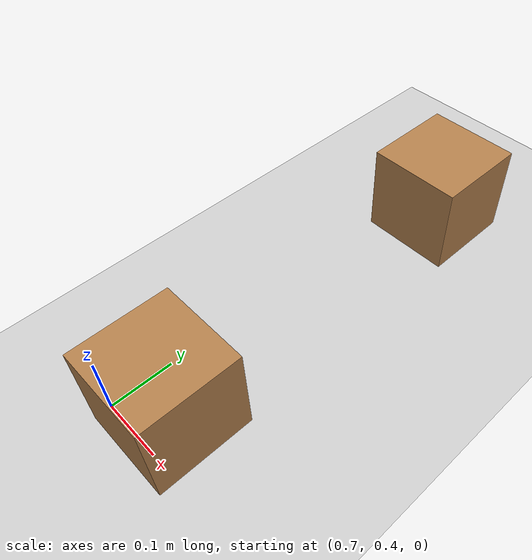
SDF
<sdf version="1.7">
 <world name="default">
  <model name="ground_plane">
   <static>1</static>
   <link name="link">
    <collision name="collision">
     <geometry><plane><normal>0 0 1</normal><size>100 100</size></plane></geometry>
     <surface>
      <contact><collide_bitmask>65535</collide_bitmask></contact>
      <friction><ode><mu>100</mu><mu2>50</mu2></ode></friction>
     </surface>
    </collision>
    <visual name="visual">
     <cast_shadows>0</cast_shadows>
     <geometry><plane><normal>0 0 1</normal><size>100 100</size></plane></geometry>
     <material>
      <script><uri>file://media/materials/scripts/gazebo.material</uri><name>Gazebo/Grey</name></script>
     </material>
    </visual>
   </link>
  </model>
  <model name="wood_cube_15">
   <link name="link">
    <pose>0 0 0.05 0 -0 0</pose>
    <inertial>
     <mass>0.5167</mass>
     <inertia>
      <ixx>0.00086117</ixx>
      <ixy>0</ixy>
      <ixz>0</ixz>
      <iyy>0.00086117</iyy>
      <iyz>0</iyz>
      <izz>0.00086117</izz>
     </inertia>
    </inertial>
    <visual name="visual">
     <geometry><box><size>0.15 0.15 0.15</size></box></geometry>
     <material>
      <script><uri>file://media/materials/scripts/gazebo.material</uri><name>Gazebo/Wood</name></script>
      <shader type="pixel"><normal_map>__default__</normal_map></shader>
      <ambient>1 1 1 1</ambient>
      <diffuse>1 1 1 1</diffuse>
      <specular>0.2 0.2 0.2 1</specular>
      <emissive>0 0 0 1</emissive>
     </material>
    </visual>
    <collision name="collision">
     <geometry><box><size>0.15 0.15 0.15</size></box></geometry>
     <surface>
      <friction>
       <ode><mu>1</mu><mu2>1</mu2><fdir1>0 0 0</fdir1><slip1>0</slip1><slip2>0</slip2></ode>
       <torsional>
        <coefficient>1</coefficient>
        <patch_radius>0</patch_radius>
        <surface_radius>0.01</surface_radius>
        <use_patch_radius>0</use_patch_radius>
        <ode><slip>0</slip></ode>
       </torsional>
      </friction>
      <bounce><restitution_coefficient>0</restitution_coefficient><threshold>1e+06</threshold></bounce>
      <contact>
       <collide_without_contact>0</collide_without_contact>
       <collide_without_contact_bitmask>1</collide_without_contact_bitmask>
       <collide_bitmask>1</collide_bitmask>
       <ode>
        <soft_cfm>0</soft_cfm>
        <soft_erp>0.2</soft_erp>
        <kp>100000</kp>
        <kd>100</kd>
        <max_vel>100</max_vel>
        <min_depth>0.001</min_depth>
       </ode>
       <bullet>
        <split_impulse>1</split_impulse>
        <split_impulse_penetration_threshold>-0.01</split_impulse_penetration_threshold>
        <soft_cfm>0</soft_cfm>
        <soft_erp>0.2</soft_erp>
        <kp>100000</kp>
        <kd>100</kd>
       </bullet>
      </contact>
     </surface>
    </collision>
   </link>
   <static>0</static>
   <pose>0.775 1 0.123987 3.14159 -0 -0.003096</pose>
  </model>
  <model name="wood_cube_15_clone">
   <link name="link">
    <pose>0 0 0.05 0 -0 0</pose>
    <inertial>
     <mass>0.5167</mass>
     <inertia>
      <ixx>0.00086117</ixx>
      <ixy>0</ixy>
      <ixz>0</ixz>
      <iyy>0.00086117</iyy>
      <iyz>0</iyz>
      <izz>0.00086117</izz>
     </inertia>
    </inertial>
    <visual name="visual">
     <geometry><box><size>0.15 0.15 0.15</size></box></geometry>
     <material>
      <script><uri>file://media/materials/scripts/gazebo.material</uri><name>Gazebo/Wood</name></script>
      <shader type="pixel"><normal_map>__default__</normal_map></shader>
      <ambient>1 1 1 1</ambient>
      <diffuse>1 1 1 1</diffuse>
      <specular>0.2 0.2 0.2 1</specular>
      <emissive>0 0 0 1</emissive>
     </material>
    </visual>
    <collision name="collision">
     <geometry><box><size>0.15 0.15 0.15</size></box></geometry>
     <surface>
      <friction>
       <ode><mu>1</mu><mu2>1</mu2><fdir1>0 0 0</fdir1><slip1>0</slip1><slip2>0</slip2></ode>
       <torsional>
        <coefficient>1</coefficient>
        <patch_radius>0</patch_radius>
        <surface_radius>0.01</surface_radius>
        <use_patch_radius>0</use_patch_radius>
        <ode><slip>0</slip></ode>
       </torsional>
      </friction>
      <bounce><restitution_coefficient>0</restitution_coefficient><threshold>1e+06</threshold></bounce>
      <contact>
       <collide_without_contact>0</collide_without_contact>
       <collide_without_contact_bitmask>1</collide_without_contact_bitmask>
       <collide_bitmask>1</collide_bitmask>
       <ode>
        <soft_cfm>0</soft_cfm>
        <soft_erp>0.2</soft_erp>
        <kp>100000</kp>
        <kd>100</kd>
        <max_vel>100</max_vel>
        <min_depth>0.001</min_depth>
       </ode>
       <bullet>
        <split_impulse>1</split_impulse>
        <split_impulse_penetration_threshold>-0.01</split_impulse_penetration_threshold>
        <soft_cfm>0</soft_cfm>
        <soft_erp>0.2</soft_erp>
        <kp>100000</kp>
        <kd>100</kd>
       </bullet>
      </contact>
     </surface>
    </collision>
   </link>
   <static>0</static>
   <pose>0.775 0.45 0.023987 0 -0 0</pose>
  </model>
 </world>
</sdf>
